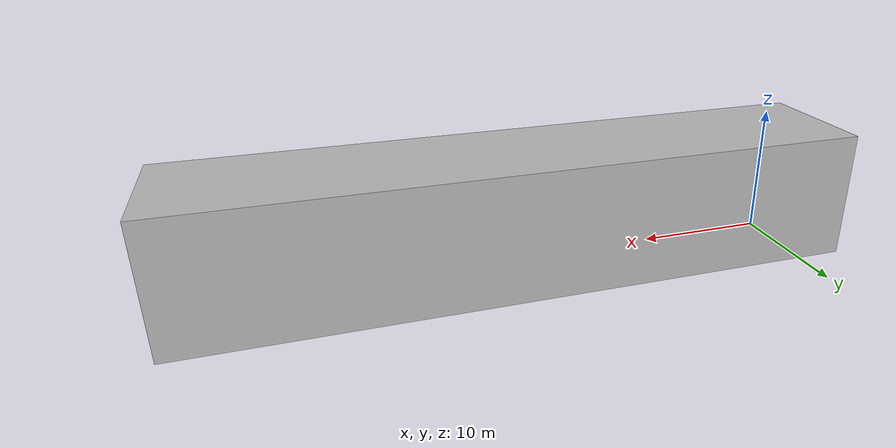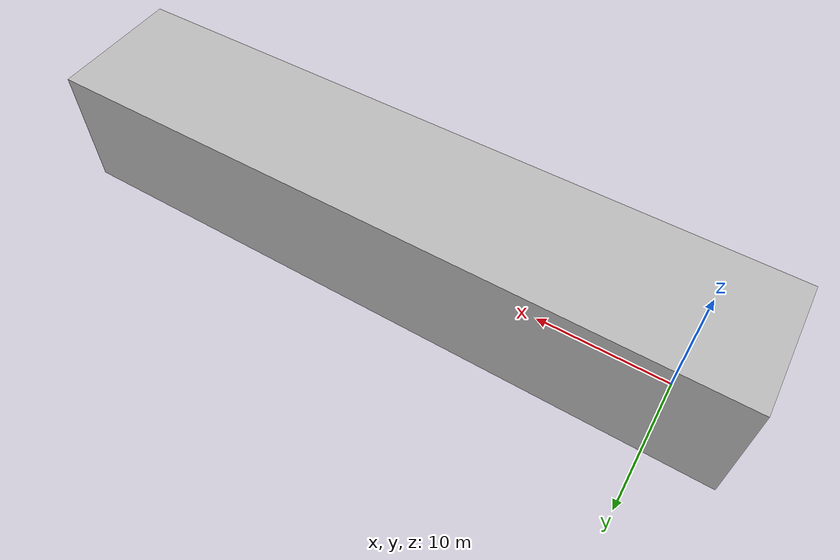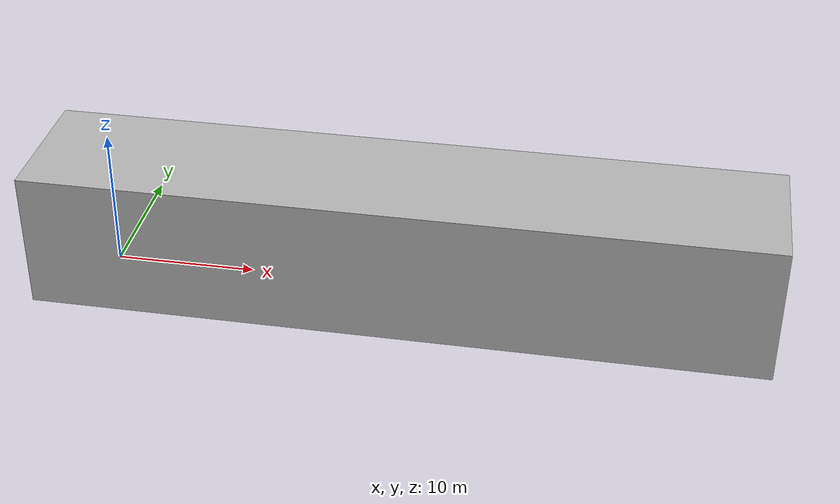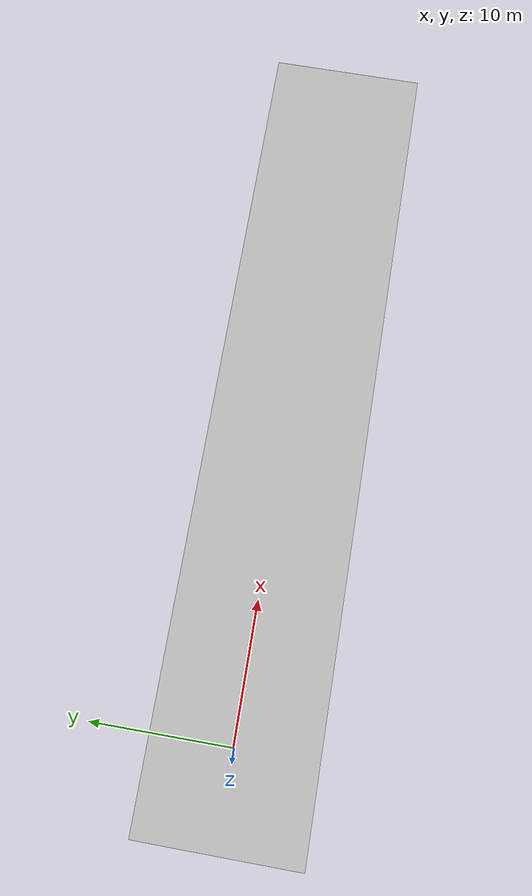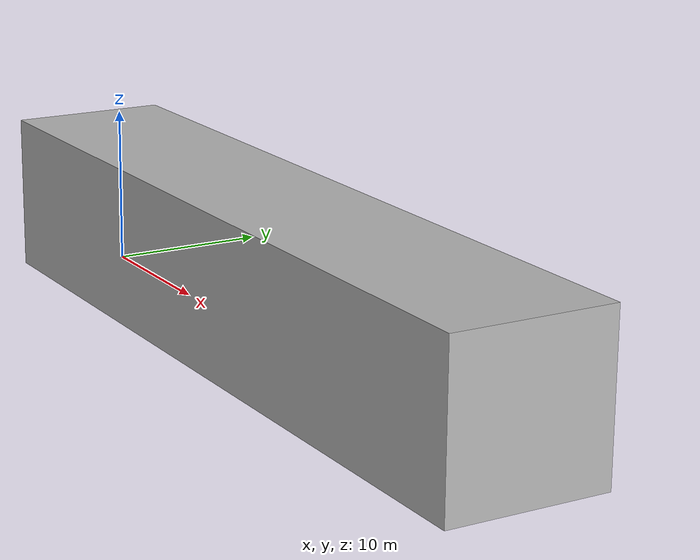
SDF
<?xml version="1.0" ?>
<sdf version="1.4">
  <world name="default">
    <scene>
      <ambient>0.5 0.5 0.5 1</ambient>
      <background>0.5 0.5 0.5 1</background>
      <shadows>false</shadows>
    </scene>
    <physics type="ode">
      <gravity>0 0 0</gravity>
      <ode>
        <solver>
          <type>quick</type>
          <iters>10</iters>
          <sor>1.3</sor>
        </solver>
        <constraints>
          <cfm>0.0</cfm>
          <erp>0.2</erp>
          <contact_max_correcting_vel>10</contact_max_correcting_vel>
          <contact_surface_layer>0.001</contact_surface_layer>
        </constraints>
      </ode>
      <max_step_size>0.01</max_step_size>
      <real_time_factor>1</real_time_factor>
      <real_time_update_rate>300</real_time_update_rate>
    </physics>

    <include>
      <uri>model://sun</uri>
    </include>

    <model name="bridge">
      <pose>-4 -4 4 0 0 0</pose>
      <static>true</static>
      <link name="body">
        <visual name="visual">
          <geometry>
            <mesh><uri>file:///home/slz/inspection_ws/src/inspection_sim/dji_gazebo/models/tunnel_simple.stl</uri><scale>0.01 0.01 0.01</scale></mesh>
          </geometry>
        </visual>

        <collision name="collision">
          <geometry>
	        <mesh><uri>file:///home/slz/inspection_ws/src/inspection_sim/dji_gazebo/models/tunnel_simple.stl</uri><scale>0.01 0.01 0.01</scale></mesh>
          </geometry>
        </collision>
      </link>
    </model>

  </world>
</sdf>
